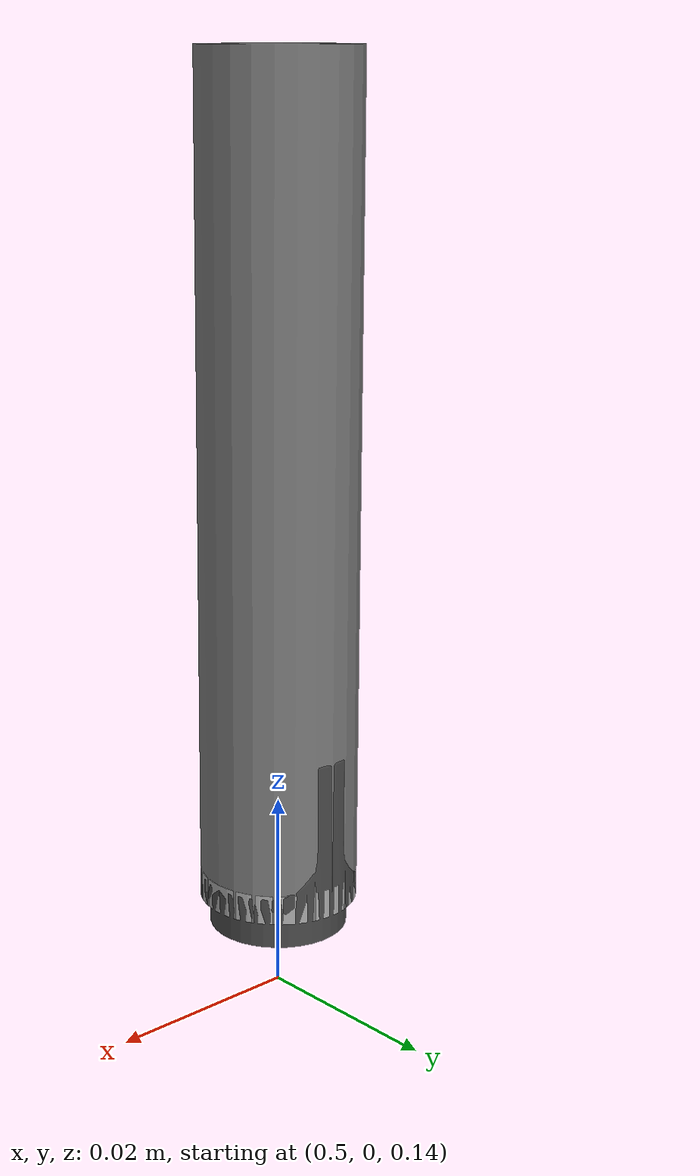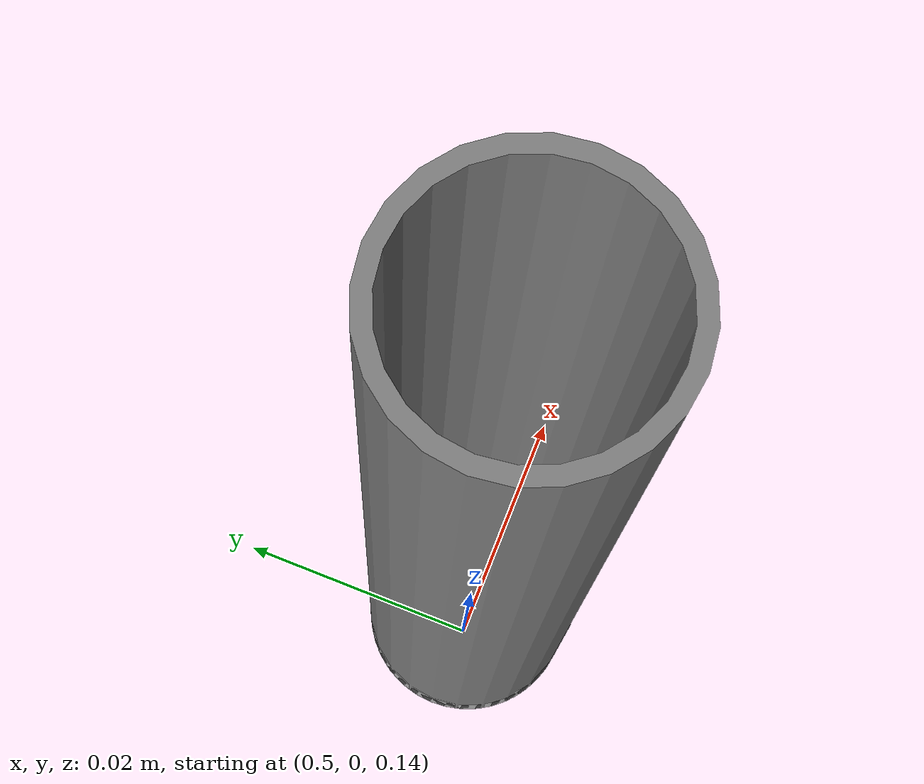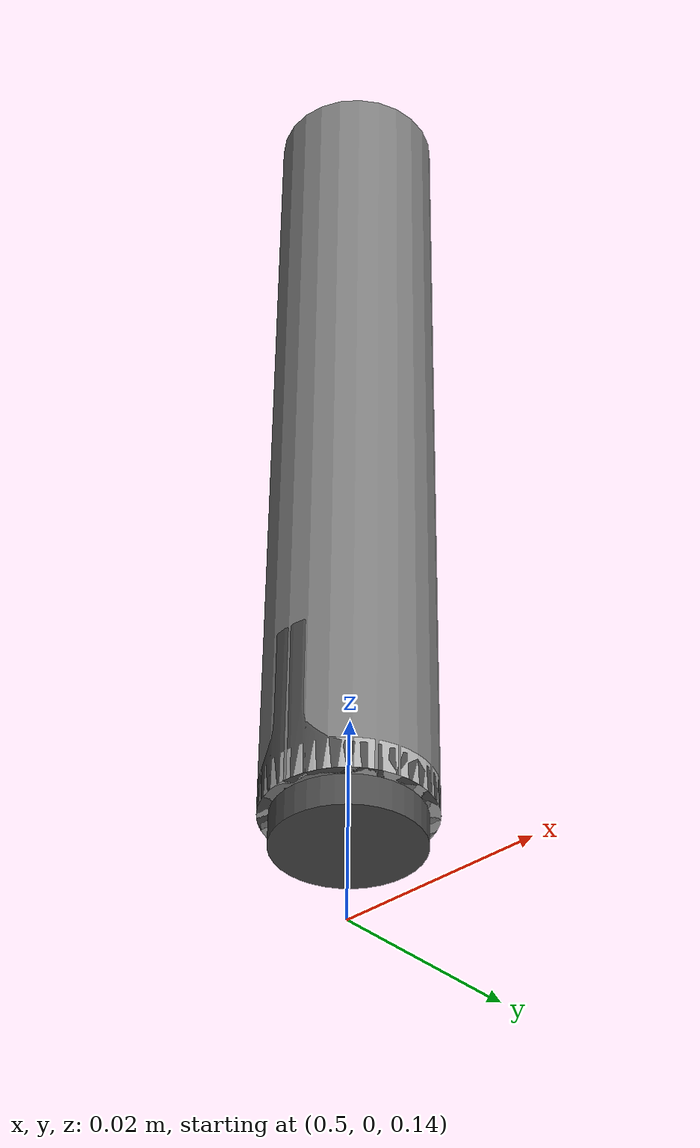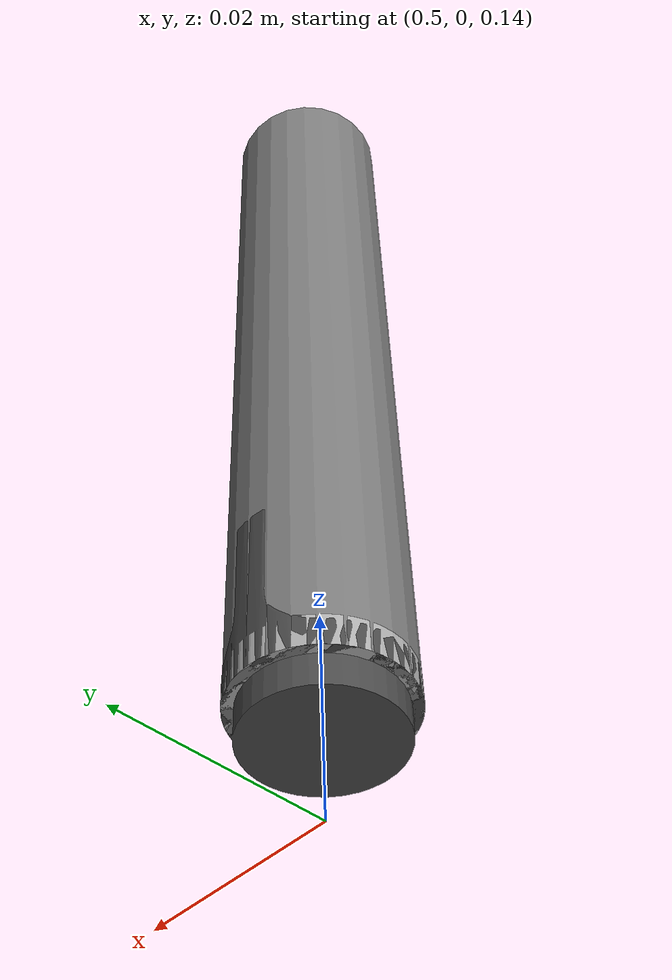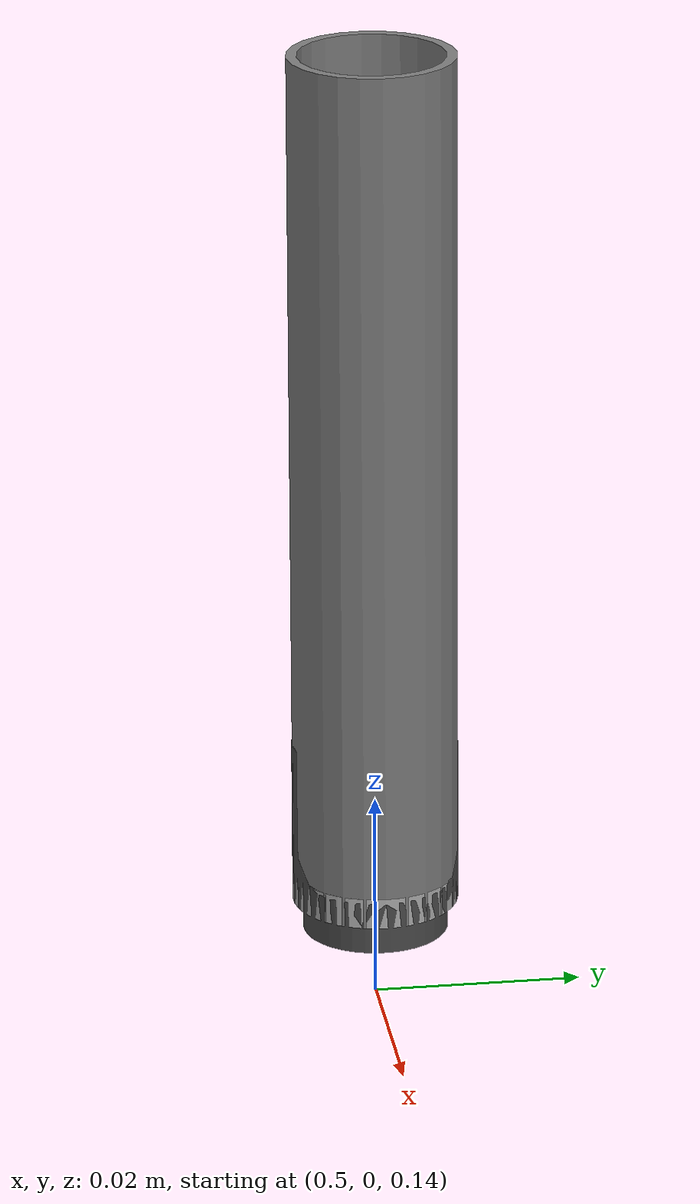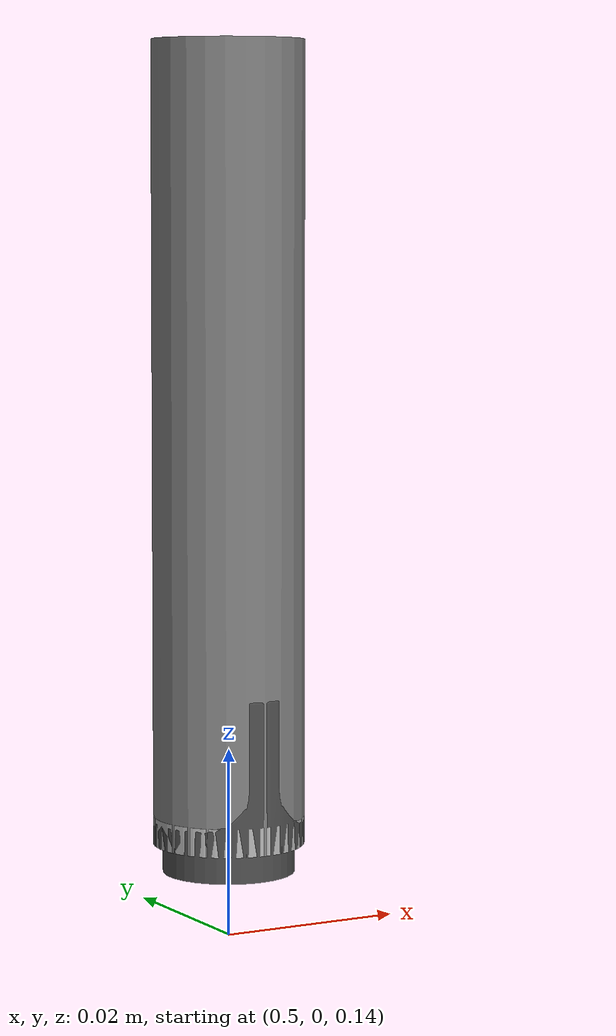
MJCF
<mujoco model="vape_disassembly">
  <option gravity="0 0 -9.81" timestep="0.002"/>

  <asset>
    <texture type="2d" name="grid" builtin="checker" width="512" height="512" rgb1="0.8 0.8 0.8" rgb2="0.6 0.6 0.6"/>
    <material name="grid_mat" texture="grid" texrepeat="5 5"/>
    <mesh name="outer_shell" file="cad_files/Outer shell.obj" scale="0.01 0.01 0.01"/>
    <mesh name="mouthpiece" file="cad_files/Mouthpiece.obj" scale="0.01 0.01 0.01"/>
    <mesh name="bottom_cap" file="cad_files/Bottom cap.obj" scale="0.01 0.01 0.01"/>
  </asset>

  <worldbody>
    <light pos="0 0 1.5" dir="0 0 -1" diffuse="1 1 1"/>
    <geom type="plane" size="1 1 0.01" material="grid_mat"/>

    <!-- Vape body (fixed in a fixture on the table) -->
    <body name="vape_fixture" pos="0.5 0 0.15">
      <!-- Outer shell - fixed -->
      <geom type="mesh" mesh="outer_shell" rgba="0.5 0.5 0.5 1"/>
      <!-- Mouthpiece - fixed to the shell -->
      <geom type="mesh" mesh="mouthpiece" rgba="0.3 0.3 0.3 1"/>

      <!-- Bottom cap (the pin to pull out) - slides along Z axis -->
      <body name="bottom_cap" pos="0 0 0">
        <joint name="pin_slide" type="slide" axis="0 0 -1" range="0 0.05" damping="5"/>
        <geom type="mesh" mesh="bottom_cap" rgba="0.7 0.7 0.7 1"/>
      </body>
    </body>
  </worldbody>
</mujoco>
